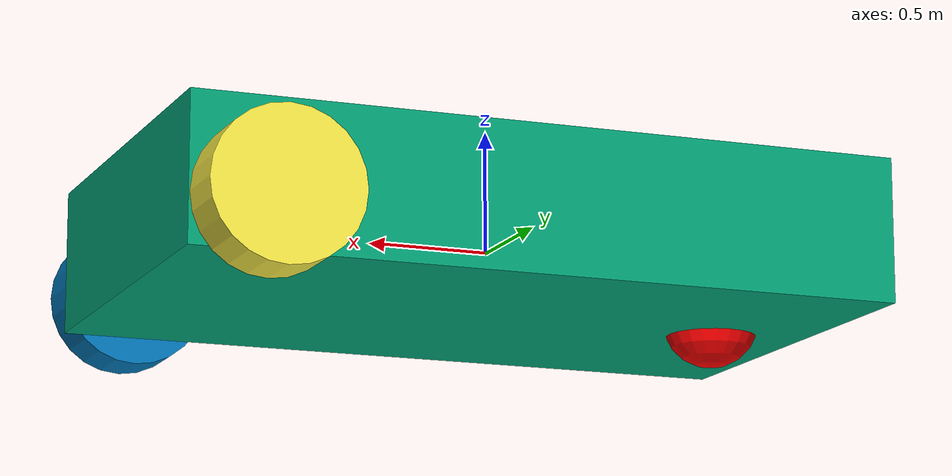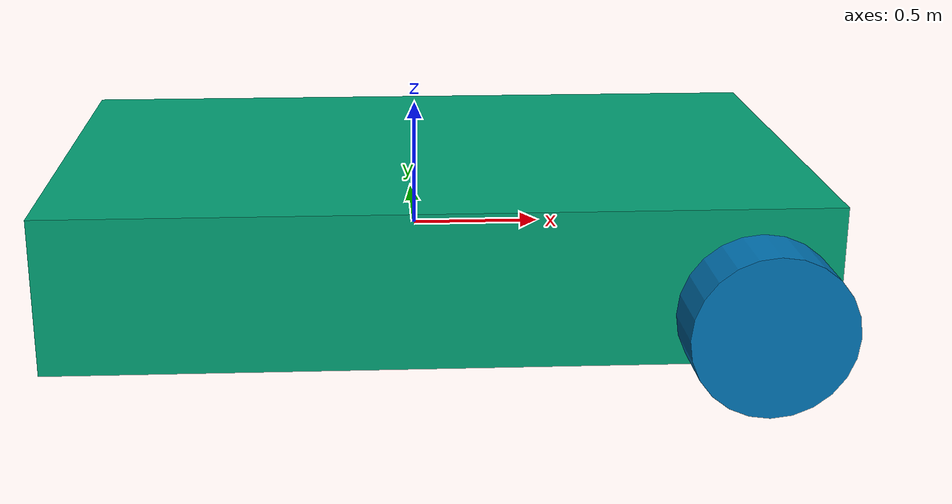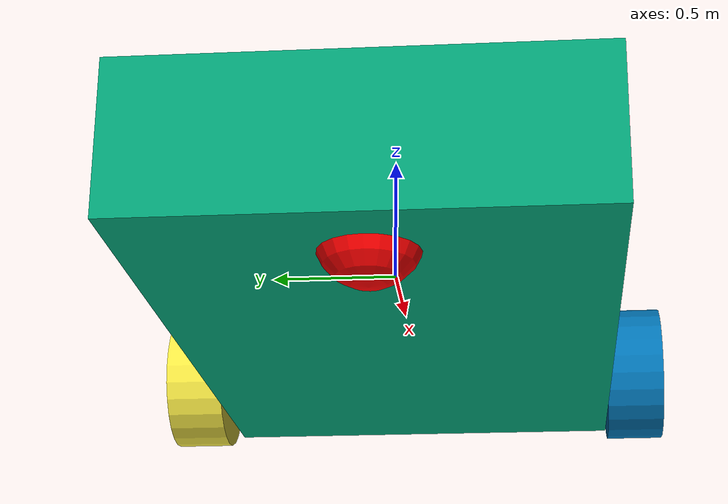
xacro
<?xml version="1.0" ?>
<robot xmlns:xacro="http://www.ros.org/wiki/xacro">

 <joint name="Root_joint" type="fixed">
    <parent link="base_link"/>
    <child link="Diff_Bot__link_0"/>
    <origin xyz="0 0 0" rpy="0 0 0"/>
  </joint>

  <joint name="foot_joint" type="fixed">
    <parent link="base_link"/>
    <child link="base_footprint"/>
    <origin xyz="0 0 0" rpy="0 0 0"/>
  </joint>

  <joint name="Diff_Bot__link_0_JOINT_1" type="continuous">
    <parent link="base_link"/>
    <child link="Diff_Bot__link_1"/>
    <origin xyz="1.20761  1.01943 -0.07838" rpy="1.5707 0 0"/>
    <axis xyz="0 0 1"/>
  </joint>

  <joint name="Diff_Bot__link_0_JOINT_2" type="continuous">
    <parent link="base_link"/>
    <child link="Diff_Bot__link_1_clone"/>
    <origin xyz="1.20761 -1.00867 -0.07838" rpy="1.5707 0     0"/>
    <axis xyz="0 0 1"/>
  </joint>

  <joint name="Diff_Bot__link_0_JOINT_3" type="fixed">
    <parent link="base_link"/>
    <child link="Diff_Bot__link_2"/>
    <origin xyz="-1 0 -0.2" rpy="0 0 0"/>
  </joint>

  <link name="base_link">
  </link>

  <link name="base_footprint">
  </link>

  <link name="Diff_Bot__link_0">
    <inertial>
      <mass value="2.99117"/>
      <origin xyz="0 0 0" rpy="0 0 0"/>
      <inertia ixx="0.860724" ixy="0" ixz="0" iyy="2.16719" iyz="0" izz="2.85604"/>
    </inertial>
    <collision name="Diff_Bot__collision">
      <origin xyz="0.06283 -0.00211  0.02162" rpy="0 0 0"/>
      <geometry>
        <box size="2.88957 1.76304 0.587159"/>
      </geometry>
    </collision>
    <visual name="Diff_Bot__visual">
      <origin xyz="0.06283 -0.00211  0.02162" rpy="0 0 0"/>
      <geometry>
        <box size="2.88957 1.76304 0.587159"/>
      </geometry>
    </visual>
  </link>

  <link name="Diff_Bot__link_1">
    <inertial>
      <mass value="1"/>
      <origin xyz="0 0 0" rpy="0 0 0"/>
      <inertia ixx="0.145833" ixy="0" ixz="0" iyy="0.145833" iyz="0" izz="0.125"/>
    </inertial>
    <collision name="Diff_Bot__collision">
      <origin xyz="0 0 0" rpy="0 0 0"/>
      <geometry>
        <cylinder radius="0.3" length="0.25"/>
      </geometry>
      <mu value="2.5"/>
    </collision>
    <visual name="Diff_Bot__visual">
      <origin xyz="0 0 0" rpy="0 0 0"/>
      <geometry>
        <cylinder radius="0.3" length="0.25"/>
      </geometry>
    </visual>
  </link>

  <gazebo>
   <friction>
     <mu>100.0</mu>
     <mu2>100.0</mu2>
   </friction>
  </gazebo>

  <link name="Diff_Bot__link_1_clone">
    <inertial>
      <mass value="1"/>
      <origin xyz="0 0 0" rpy="0 0 0"/>
      <inertia ixx="0.145833" ixy="0" ixz="0" iyy="0.145833" iyz="0" izz="0.125"/>
    </inertial>
    <collision name="Diff_Bot__collision">
      <origin xyz="0 0 0" rpy="0 0 0"/>
      <geometry>
        <cylinder radius="0.3" length="0.25"/>
      </geometry>
    </collision>
    <visual name="Diff_Bot__visual">
      <origin xyz="0 0 0" rpy="0 0 0"/>
      <geometry>
        <cylinder radius="0.3" length="0.25"/>
      </geometry>
    </visual>
  </link>

  <gazebo reference="Diff_Bot__link_1_clone">
    <friction>
        <mu>100.0</mu>
        <mu2>100.0</mu2>
    </friction>
   </gazebo>

  <link name="Diff_Bot__link_2">
    <inertial>
      <mass value="1"/>
      <origin xyz="0 0 0" rpy="0 0 0"/>
      <inertia ixx="0.1" ixy="0" ixz="0" iyy="0.1" iyz="0" izz="0.1"/>
      <mu value="0.001"/>
    </inertial>
    <collision name="Diff_Bot__collision">
      <origin xyz="0 0 0" rpy="0 0 0"/>
      <geometry>
        <sphere radius="0.2"/>
      </geometry>
    </collision>
    <visual name="Diff_Bot__visual1">
      <origin xyz="0 0 0" rpy="0 0 0"/>
      <geometry>
        <sphere radius="0.2"/>
      </geometry>
      <material name="red">
           <color rgba="1 0 0 1"/>
      </material>
    </visual>
  </link>

  <gazebo reference="Diff_Bot__link_2">
    <friction>
        <mu>0.0001</mu>
        <mu2>0.0001</mu2>
    </friction>
  </gazebo>

</robot>
